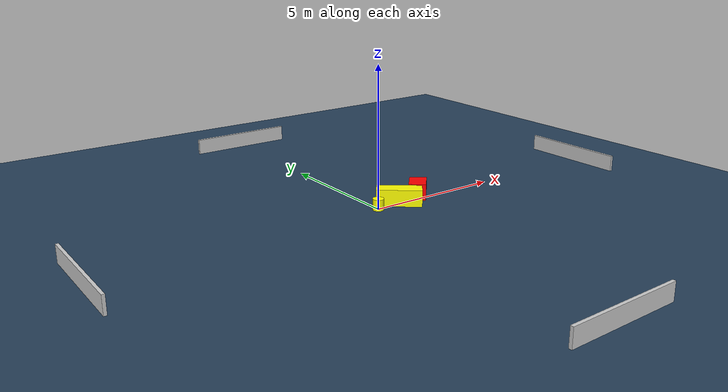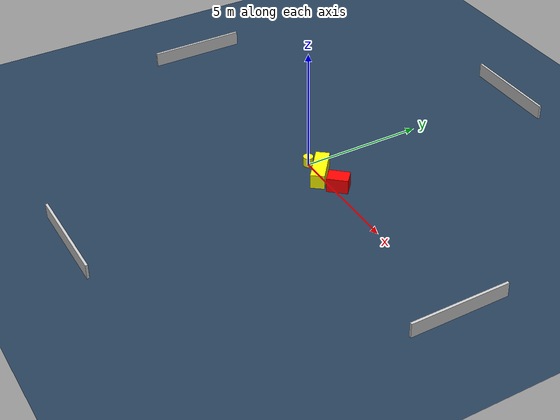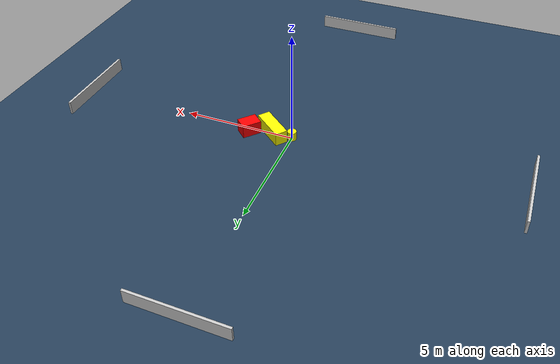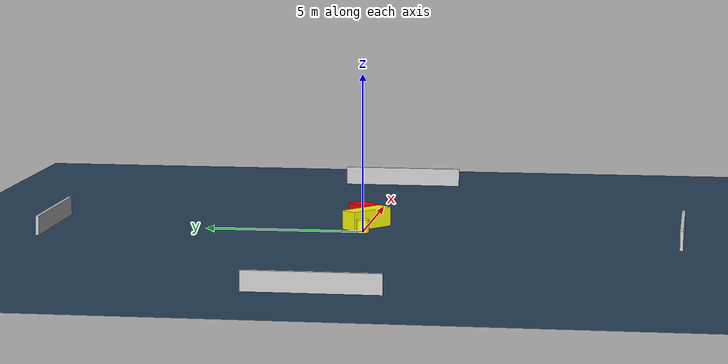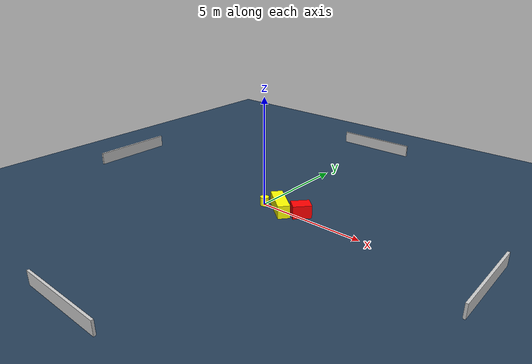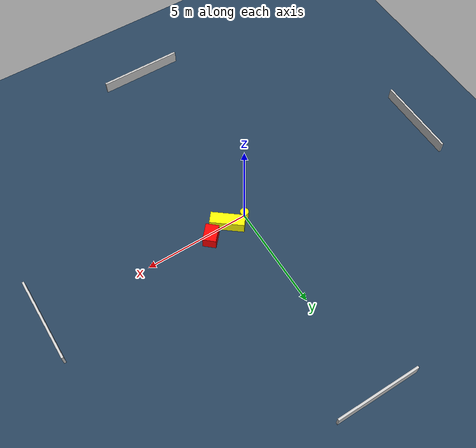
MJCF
<?xml version="1.0" ?>
<mujoco model="generated_environment">
  <option timestep="0.01" integrator="RK4" cone="elliptic"/>
  <default>
    <geom density="1"/>
  </default>
  <asset>
    <texture builtin="gradient" height="3072" name="skybox" rgb1="0.3 0.5 0.7" rgb2="0 0 0" type="skybox" width="512"/>
    <texture builtin="checker" height="300" name="groundplane" rgb1="0.2 0.3 0.4" rgb2="0.1 0.2 0.3" type="2d" width="300"/>
    <material name="groundplane" reflectance="0.2" texrepeat="5 5" texture="groundplane"/>
  </asset>
  <worldbody>
    <light dir="0 0 -1" directional="true" pos="0 0 1.5"/>
    <geom condim="3" friction="0.5 0.005 0.001" material="groundplane" name="floor" pos="0 0 0" size="0 0 0.05" type="plane"/>
    <body name="walls">
      <geom name="wall_1" condim="4" pos="-10.0 0.0 0.3" rgba="0.800000011920929 0.800000011920929 0.800000011920929 1.0" size="0.05 2.0 0.3" type="box"/>
      <geom name="wall_2" condim="4" pos="10.0 0.0 0.3" rgba="0.800000011920929 0.800000011920929 0.800000011920929 1.0" size="0.05 2.0 0.3" type="box"/>
      <geom name="wall_3" condim="4" pos="0.0 -10.0 0.3" rgba="0.800000011920929 0.800000011920929 0.800000011920929 1.0" size="2.0 0.05 0.3" type="box"/>
      <geom name="wall_4" condim="4" pos="0.0 10.0 0.3" rgba="0.800000011920929 0.800000011920929 0.800000011920929 1.0" size="2.0 0.05 0.3" type="box"/>
    </body>
    <body name="robot">
      <joint name="joint_x" type="slide" pos="0 0 0" axis="1 0 0"/>
      <joint name="joint_y" type="slide" pos="0 0 0" axis="0 1 0"/>
      <geom name="robot" type="cylinder" pos="0.0 0.0 0.2" size="0.2 0.2 0.0" mass="5.0" friction="1.0 0.005 0.0001" condim="4" rgba="1.0 1.0 0.0 1.0"/>
    </body>
    <body name="obstacle_1_movable">
      <geom name="obstacle_1_movable" condim="4" pos="0.9112010927319162 0.0027042704493434083 0.3" euler="0 0 231.66950735661192" friction="0.0 0.005 0.001" rgba="1.0 1.0 0.0 1.0" size="0.27707079684924824 0.7974128748059681 0.3" type="box" mass="0.1"/>
      <joint type="free"/>
    </body>
    <body name="obstacle_2_static">
      <geom name="obstacle_2_static" condim="4" pos="1.916425904164016 0.21932551551278803 0.3" euler="0 0 228.51219051257746" friction="0.0 0.005 0.001" rgba="1.0 0.0 0.0 1.0" size="0.42242143228391366 0.30768807204591553 0.3" type="box"/>
    </body>
  </worldbody>
  <actuator>
    <motor name="actuator_x" joint="joint_x" gear="1" ctrlrange="-1 1"/>
    <motor name="actuator_y" joint="joint_y" gear="1" ctrlrange="-1 1"/>
  </actuator>
</mujoco>
